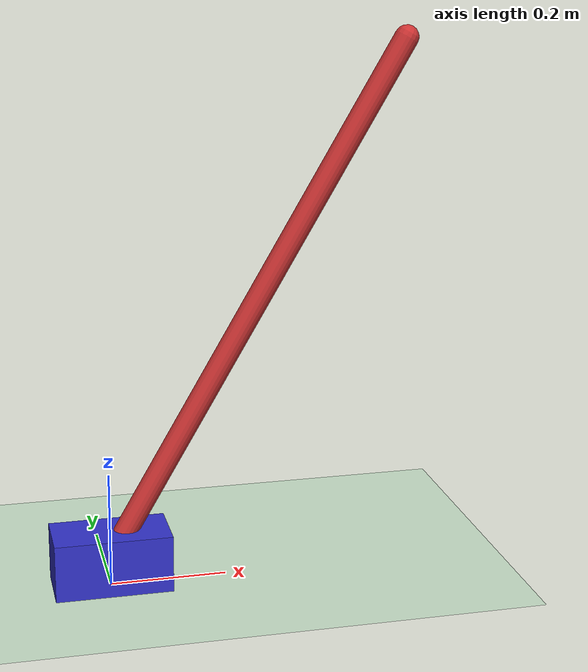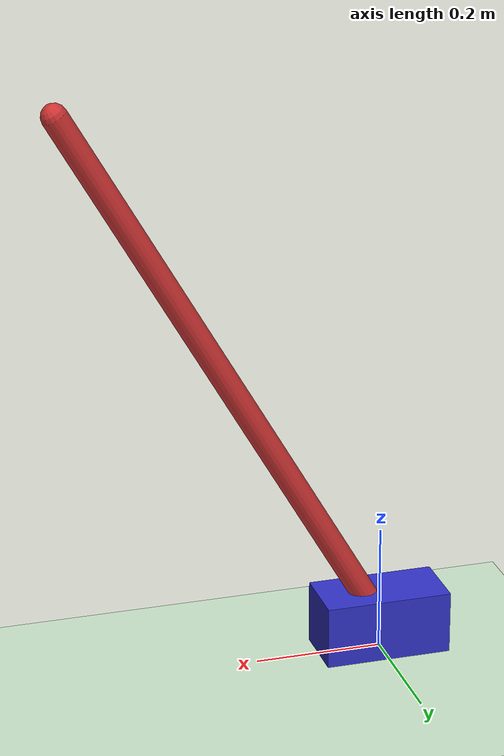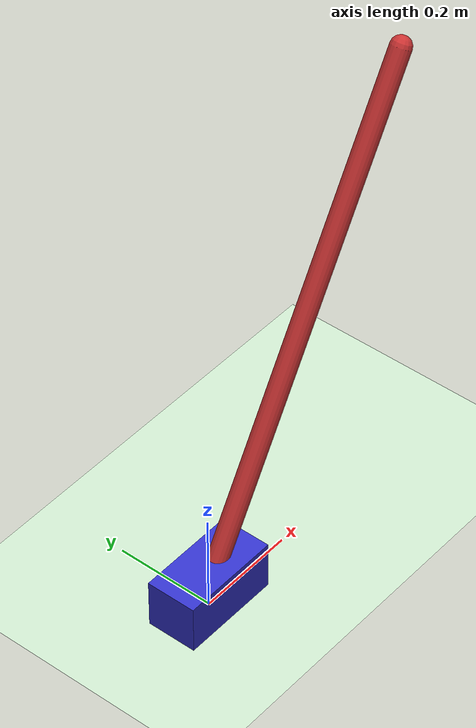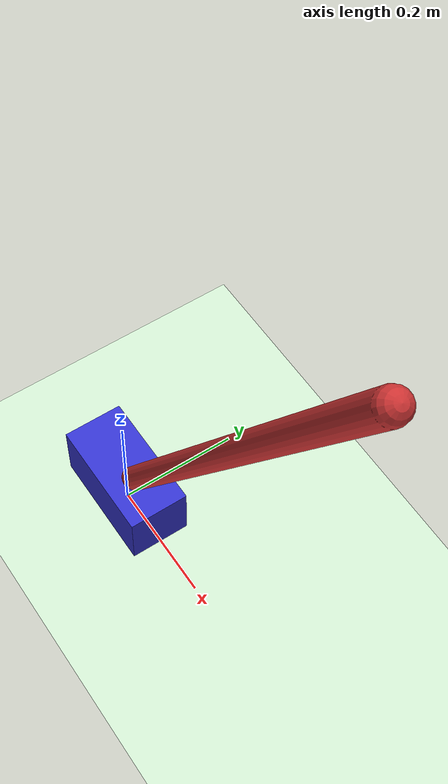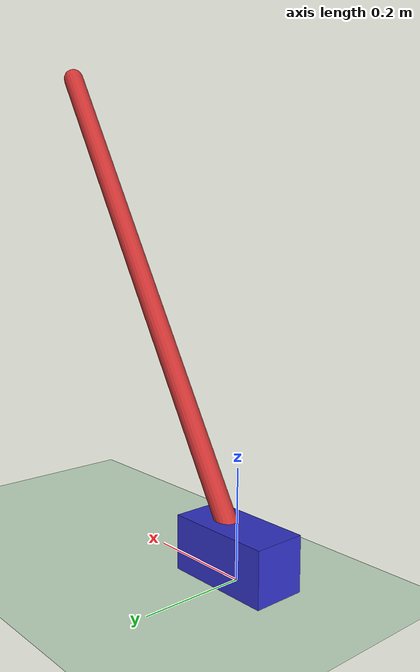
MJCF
<mujoco model="inverted_pendulum">
    <compiler angle="degree"/>
    <option gravity="0 0 -9.81" timestep="0.002"/>

    <!-- Initial conditions -->
    <keyframe>
        <!-- qpos: [cart_pos, hinge_angle], qvel: [cart_vel, hinge_vel] -->
        <key name="start" qpos="0 30" qvel="0 2"/>
    </keyframe>

    <!-- Ground plane -->
    <worldbody>
        <geom name="floor" type="plane" size="5 5 0.1" rgba="0.8 0.9 0.8 1"/>

        <!-- Cart -->
        <body name="cart" pos="0 0 0.05">
            <joint name="slider" type="slide" axis="1 0 0" limited="false"/>
            <geom type="box" size="0.1 0.05 0.05" rgba="0.2 0.2 0.8 1" mass="1"/>

            <!-- Pendulum pole -->
            <body name="pole" pos="0 0 0" euler="0 30 0">
                <joint name="hinge" type="hinge" axis="0 1 0" limited="false" damping="0.01"/>
                <geom type="capsule" fromto="0 0 0 0 0 1" size="0.02" rgba="0.8 0.2 0.2 1" mass="0.5"/>
            </body>
        </body>
    </worldbody>

    <!-- Actuator -->
    <actuator>
        <motor joint="hinge" ctrlrange="-1 1" gear="1"/>
    </actuator>
</mujoco>
